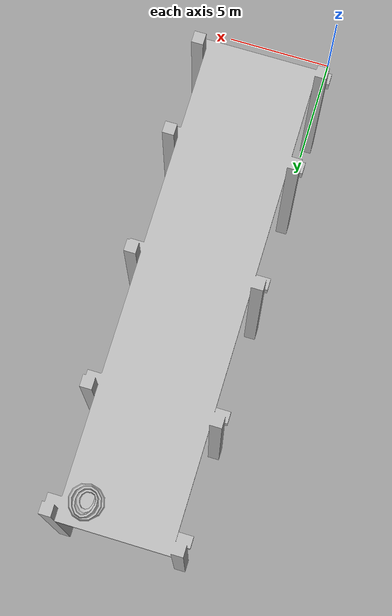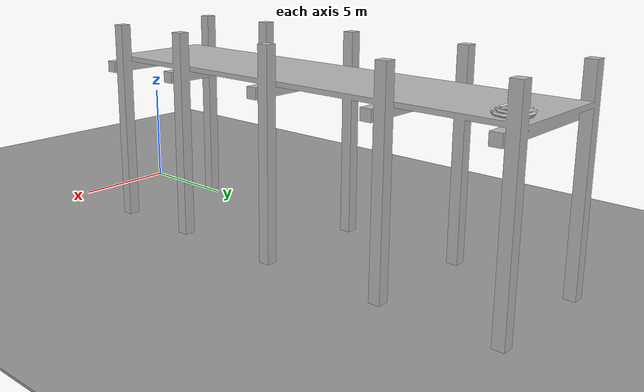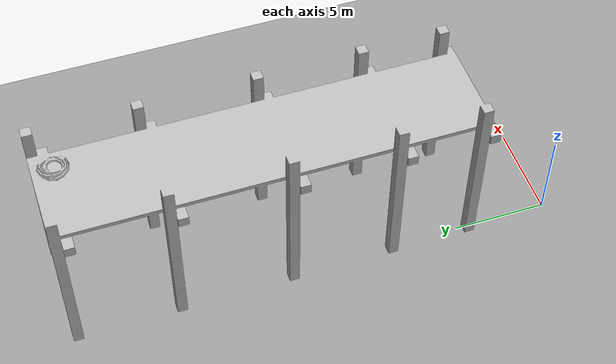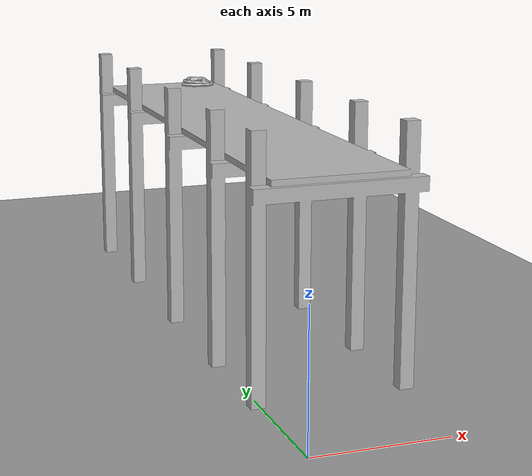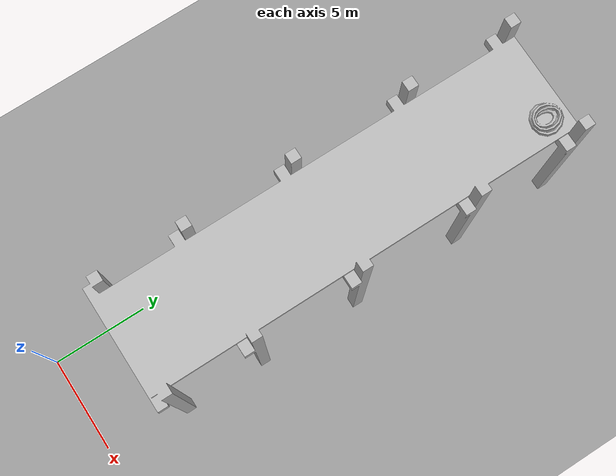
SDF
<sdf version="1.7">
 <world name="default">
  <model name="ground_plane">
   <static>1</static>
   <link name="link">
    <collision name="collision">
     <geometry><plane><normal>0 0 1</normal><size>100 100</size></plane></geometry>
     <surface><friction><ode><mu>100</mu><mu2>50</mu2></ode></friction></surface>
    </collision>
    <visual name="visual">
     <cast_shadows>0</cast_shadows>
     <geometry><plane><normal>0 0 1</normal><size>100 100</size></plane></geometry>
     <material>
      <script><uri>file://media/materials/scripts/gazebo.material</uri><name>Gazebo/Grey</name></script>
     </material>
    </visual>
   </link>
  </model>
  <gravity>0 0 -9.8</gravity>
  <magnetic_field>6e-06 2.3e-05 -4.2e-05</magnetic_field>
  <atmosphere type="adiabatic"/>
  <physics type="ode">
   <max_step_size>0.001</max_step_size>
   <real_time_factor>1</real_time_factor>
   <real_time_update_rate>1000</real_time_update_rate>
  </physics>
  <scene><ambient>0.4 0.4 0.4 1</ambient><background>0.7 0.7 0.7 1</background><shadows>1</shadows></scene>
  <spherical_coordinates>
   <surface_model>EARTH_WGS84</surface_model>
   <latitude_deg>0</latitude_deg>
   <longitude_deg>0</longitude_deg>
   <elevation>0</elevation>
   <heading_deg>0</heading_deg>
  </spherical_coordinates>
  <model name="ground_plane_0">
   <static>1</static>
   <link name="link">
    <collision name="collision">
     <geometry><plane><normal>0 0 1</normal><size>100 100</size></plane></geometry>
     <surface>
      <contact><collide_bitmask>65535</collide_bitmask></contact>
      <friction><ode><mu>100</mu><mu2>50</mu2></ode></friction>
     </surface>
    </collision>
    <visual name="visual">
     <cast_shadows>0</cast_shadows>
     <geometry><plane><normal>0 0 1</normal><size>100 100</size></plane></geometry>
     <material>
      <script><uri>file://media/materials/scripts/gazebo.material</uri><name>Gazebo/Grey</name></script>
     </material>
    </visual>
   </link>
   <pose>0.189754 0.022587 0 0 -0 0</pose>
  </model>
  <model name="pier">
   <static>1</static>
   <link name="link">
    <pose>0 0 7.45747 0 -0 0</pose>
    <collision name="collision_platform">
     <pose>0 11.1915 0.479154 0 -0 0</pose>
     <geometry><box><size>4.99841 22.1059 0.223137</size></box></geometry>
    </collision>
    <collision name="collision_pillar1">
     <pose>2.7658 0.839949 -2.6492 0 -0 0</pose>
     <geometry><box><size>0.526207 0.526207 9.61655</size></box></geometry>
    </collision>
    <collision name="collision_pillar2">
     <pose>2.7658 5.1533 -2.6492 0 -0 0</pose>
     <geometry><box><size>0.526207 0.526207 9.61655</size></box></geometry>
    </collision>
    <collision name="collision_pillar3">
     <pose>2.7658 10.6027 -2.6492 0 -0 0</pose>
     <geometry><box><size>0.526207 0.526207 9.61655</size></box></geometry>
    </collision>
    <collision name="collision_pillar4">
     <pose>2.7658 16.5973 -2.6492 0 -0 0</pose>
     <geometry><box><size>0.526207 0.526207 9.61655</size></box></geometry>
    </collision>
    <collision name="collision_pillar5">
     <pose>2.7658 21.9768 -2.6492 0 -0 0</pose>
     <geometry><box><size>0.526207 0.526207 9.61655</size></box></geometry>
    </collision>
    <collision name="collision_pillar6">
     <pose>-2.7658 0.839949 -2.6492 0 -0 0</pose>
     <geometry><box><size>0.526207 0.526207 9.61655</size></box></geometry>
    </collision>
    <collision name="collision_pillar7">
     <pose>-2.7658 5.1533 -2.6492 0 -0 0</pose>
     <geometry><box><size>0.526207 0.526207 9.61655</size></box></geometry>
    </collision>
    <collision name="collision_pillar8">
     <pose>-2.7658 10.6027 -2.6492 0 -0 0</pose>
     <geometry><box><size>0.526207 0.526207 9.61655</size></box></geometry>
    </collision>
    <collision name="collision_pillar9">
     <pose>-2.7658 16.5973 -2.6492 0 -0 0</pose>
     <geometry><box><size>0.526207 0.526207 9.61655</size></box></geometry>
    </collision>
    <collision name="collision_pillar10">
     <pose>-2.7658 21.9768 -2.6492 0 -0 0</pose>
     <geometry><box><size>0.526207 0.526207 9.61655</size></box></geometry>
    </collision>
    <collision name="collision_beam1">
     <pose>0 0.303862 0.079695 0 -0 0</pose>
     <geometry><box><size>6.28904 0.526207 0.526207</size></box></geometry>
    </collision>
    <collision name="collision_beam2">
     <pose>0 4.61721 0.079695 0 -0 0</pose>
     <geometry><box><size>6.28904 0.526207 0.526207</size></box></geometry>
    </collision>
    <collision name="collision_beam3">
     <pose>0 10.0666 0.079695 0 -0 0</pose>
     <geometry><box><size>6.28904 0.526207 0.526207</size></box></geometry>
    </collision>
    <collision name="collision_beam4">
     <pose>0 16.0612 0.079695 0 -0 0</pose>
     <geometry><box><size>6.28904 0.526207 0.526207</size></box></geometry>
    </collision>
    <collision name="collision_beam5">
     <pose>0 21.4407 0.079695 0 -0 0</pose>
     <geometry><box><size>6.28904 0.526207 0.526207</size></box></geometry>
    </collision>
    <visual name="visual"><geometry><mesh><uri>model://pier/meshes/pier.dae</uri></mesh></geometry></visual>
   </link>
   <pose>2.62667 3.5762 0 0 -0 0</pose>
  </model>
  <light name="user_point_light_0" type="point">
   <pose>-9.79279 15.872 1 0 -0 0</pose>
   <diffuse>0.5 0.5 0.5 1</diffuse>
   <specular>0.1 0.1 0.1 1</specular>
   <attenuation>
    <range>20</range>
    <constant>0.5</constant>
    <linear>0.01</linear>
    <quadratic>0.001</quadratic>
   </attenuation>
   <cast_shadows>0</cast_shadows>
   <direction>0 0 -1</direction>
  </light>
  <light name="user_point_light_1" type="point">
   <pose>-6.76068 10.9435 1 0 -0 0</pose>
   <diffuse>0.5 0.5 0.5 1</diffuse>
   <specular>0.1 0.1 0.1 1</specular>
   <attenuation>
    <range>20</range>
    <constant>0.5</constant>
    <linear>0.01</linear>
    <quadratic>0.001</quadratic>
   </attenuation>
   <cast_shadows>0</cast_shadows>
   <direction>0 0 -1</direction>
  </light>
  <light name="user_point_light_2" type="point">
   <pose>-0.615022 11.6714 1 0 -0 0</pose>
   <diffuse>0.5 0.5 0.5 1</diffuse>
   <specular>0.1 0.1 0.1 1</specular>
   <attenuation>
    <range>20</range>
    <constant>0.5</constant>
    <linear>0.01</linear>
    <quadratic>0.001</quadratic>
   </attenuation>
   <cast_shadows>0</cast_shadows>
   <direction>0 0 -1</direction>
  </light>
  <light name="user_point_light_3" type="point">
   <pose>5.91733 19.5228 1 0 -0 0</pose>
   <diffuse>0.5 0.5 0.5 1</diffuse>
   <specular>0.1 0.1 0.1 1</specular>
   <attenuation>
    <range>20</range>
    <constant>0.5</constant>
    <linear>0.01</linear>
    <quadratic>0.001</quadratic>
   </attenuation>
   <cast_shadows>0</cast_shadows>
   <direction>0 0 -1</direction>
  </light>
  <light name="user_point_light_4" type="point">
   <pose>7.18852 9.01023 1 0 -0 0</pose>
   <diffuse>0.5 0.5 0.5 1</diffuse>
   <specular>0.1 0.1 0.1 1</specular>
   <attenuation>
    <range>20</range>
    <constant>0.5</constant>
    <linear>0.01</linear>
    <quadratic>0.001</quadratic>
   </attenuation>
   <cast_shadows>0</cast_shadows>
   <direction>0 0 -1</direction>
  </light>
  <light name="user_point_light_5" type="point">
   <pose>-1.46866 27.8049 1 0 -0 0</pose>
   <diffuse>0.5 0.5 0.5 1</diffuse>
   <specular>0.1 0.1 0.1 1</specular>
   <attenuation>
    <range>20</range>
    <constant>0.5</constant>
    <linear>0.01</linear>
    <quadratic>0.001</quadratic>
   </attenuation>
   <cast_shadows>0</cast_shadows>
   <direction>0 0 -1</direction>
  </light>
  <light name="user_point_light_6" type="point">
   <pose>4.49887 27.0501 1 0 -0 0</pose>
   <diffuse>0.5 0.5 0.5 1</diffuse>
   <specular>0.1 0.1 0.1 1</specular>
   <attenuation>
    <range>20</range>
    <constant>0.5</constant>
    <linear>0.01</linear>
    <quadratic>0.001</quadratic>
   </attenuation>
   <cast_shadows>0</cast_shadows>
   <direction>0 0 -1</direction>
  </light>
  <light name="user_point_light_7" type="point">
   <pose>5.91095 4.06868 1 0 -0 0</pose>
   <diffuse>0.5 0.5 0.5 1</diffuse>
   <specular>0.1 0.1 0.1 1</specular>
   <attenuation>
    <range>20</range>
    <constant>0.5</constant>
    <linear>0.01</linear>
    <quadratic>0.001</quadratic>
   </attenuation>
   <cast_shadows>0</cast_shadows>
   <direction>0 0 -1</direction>
  </light>
  <light name="user_point_light_8" type="point">
   <pose>-1.2363 2.62236 1 0 -0 0</pose>
   <diffuse>0.5 0.5 0.5 1</diffuse>
   <specular>0.1 0.1 0.1 1</specular>
   <attenuation>
    <range>20</range>
    <constant>0.5</constant>
    <linear>0.01</linear>
    <quadratic>0.001</quadratic>
   </attenuation>
   <cast_shadows>0</cast_shadows>
   <direction>0 0 -1</direction>
  </light>
  <light name="user_point_light_9" type="point">
   <pose>-6.21917 21.4822 1 0 -0 0</pose>
   <diffuse>0.5 0.5 0.5 1</diffuse>
   <specular>0.1 0.1 0.1 1</specular>
   <attenuation>
    <range>20</range>
    <constant>0.5</constant>
    <linear>0.01</linear>
    <quadratic>0.001</quadratic>
   </attenuation>
   <cast_shadows>0</cast_shadows>
   <direction>0 0 -1</direction>
  </light>
  <light name="user_point_light_10" type="point">
   <pose>-0.017682 22.9858 1 0 -0 0</pose>
   <diffuse>0.5 0.5 0.5 1</diffuse>
   <specular>0.1 0.1 0.1 1</specular>
   <attenuation>
    <range>20</range>
    <constant>0.5</constant>
    <linear>0.01</linear>
    <quadratic>0.001</quadratic>
   </attenuation>
   <cast_shadows>0</cast_shadows>
   <direction>0 0 -1</direction>
  </light>
  <light name="user_point_light_11" type="point">
   <pose>-0.833476 15.9833 1 0 -0 0</pose>
   <diffuse>0.5 0.5 0.5 1</diffuse>
   <specular>0.1 0.1 0.1 1</specular>
   <attenuation>
    <range>20</range>
    <constant>0.5</constant>
    <linear>0.01</linear>
    <quadratic>0.001</quadratic>
   </attenuation>
   <cast_shadows>0</cast_shadows>
   <direction>0 0 -1</direction>
  </light>
  <light name="user_point_light_12" type="point">
   <pose>-1.14791 5.35792 1 0 -0 0</pose>
   <diffuse>0.5 0.5 0.5 1</diffuse>
   <specular>0.1 0.1 0.1 1</specular>
   <attenuation>
    <range>20</range>
    <constant>0.5</constant>
    <linear>0.01</linear>
    <quadratic>0.001</quadratic>
   </attenuation>
   <cast_shadows>0</cast_shadows>
   <direction>0 0 -1</direction>
  </light>
 </world>
</sdf>
